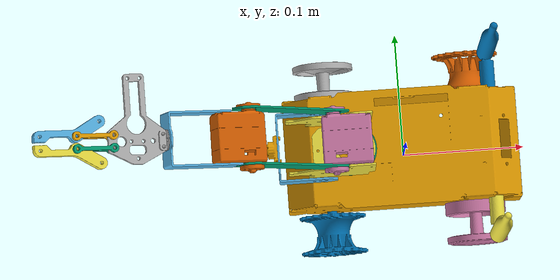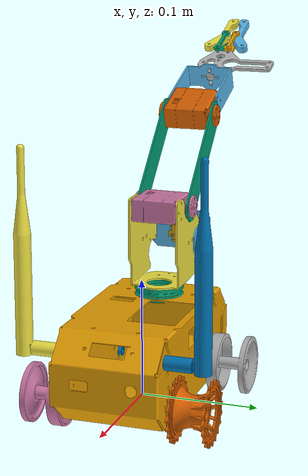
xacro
<robot xmlns:xacro="http://www.ros.org/wiki/xacro">

 <link name="base_link">
        <inertial>
            <origin xyz="-0.0028864851424563968 0.0003605395998919554 0.03729152724217677"
                rpy="0.0 0.0 0.0" />
            <mass value="0.7639308708503839" />
            <inertia ixx="0.00150205741988797" iyy="0.003532242168965159" izz="0.003808278739772123"
                ixy="2.0200689378287296e-06" iyz="4.791503412361428e-06" ixz="5.068154904514763e-05" />
        </inertial>
        <visual name="base_link_visual">
            <origin xyz="0.0 0.0 0.0" rpy="0.0 0.0 0.0" />
            <geometry>
                <mesh filename="file://$(find jetank_bringup)/meshes/base_link.stl"
                    scale="0.001 0.001 0.001" />
            </geometry>
        </visual>
        <collision name="base_link_collision">
            <origin xyz="0.0 0.0 0.0" rpy="0.0 0.0 0.0" />
            <geometry>
                <mesh filename="file://$(find jetank_bringup)/meshes/base_link.stl"
                    scale="0.001 0.001 0.001" />
            </geometry>
        </collision>
    </link>
    <link name="ARM_UPPER">
        <inertial>
            <origin xyz="-0.022908278643665785 0.0006057553402017391 -0.01928712656788768"
                rpy="0.0 -4.220565730941431e-35 -6.162975822039156e-33" />
            <mass value="0.03565761396104929" />
            <inertia ixx="1.5443417400841932e-05" iyy="2.3764463595438004e-05"
                izz="1.3620194048359787e-05" ixy="3.625928097526083e-06"
                iyz="4.6051936175620323e-07" ixz="-1.1226347876157484e-06" />
        </inertial>
        <visual name="ARM_UPPER_visual">
            <origin xyz="-0.042675603894513275 0.008004289658434232 -0.020301207430691776"
                rpy="0.22339825954275927 -1.556184340833111 -0.5813072278980501" />
            <geometry>
                <mesh filename="file://$(find jetank_bringup)/meshes/ARM_UPPER.stl"
                    scale="0.001 0.001 0.001" />
            </geometry>
        </visual>
        <collision name="ARM_UPPER_collision">
            <origin xyz="-0.042675603894513275 0.008004289658434232 -0.020301207430691776"
                rpy="0.22339825954275927 -1.556184340833111 -0.5813072278980501" />
            <geometry>
                <mesh filename="file://$(find jetank_bringup)/meshes/ARM_UPPER.stl"
                    scale="0.001 0.001 0.001" />
            </geometry>
        </collision>
    </link>
    <link name="ARM_MIDDLE">
        <inertial>
            <origin xyz="-0.03358748266767387 0.03358762804395098 -5.157163600578385e-05"
                rpy="0.0 2.407412430484311e-35 1.2161079430919492e-49" />
            <mass value="0.06186397464920469" />
            <inertia ixx="6.497179907917266e-05" iyy="6.497176903594811e-05"
                izz="6.838533670855049e-05" ixy="3.117958759744717e-05" iyz="1.061073116136028e-07"
                ixz="5.2995547323661035e-08" />
        </inertial>
        <visual name="ARM_MIDDLE_visual">
            <origin xyz="-0.0335092778226662 0.03363301371186834 -0.021602684974064732"
                rpy="-3.137540926469612 -0.0010856452132872892 -0.7854003629070162" />
            <geometry>
                <mesh filename="file://$(find jetank_bringup)/meshes/ARM_MIDDLE.stl"
                    scale="0.001 0.001 0.001" />
            </geometry>
        </visual>
        <collision name="ARM_MIDDLE_collision">
            <origin xyz="-0.0335092778226662 0.03363301371186834 -0.021602684974064732"
                rpy="-3.137540926469612 -0.0010856452132872892 -0.7854003629070162" />
            <geometry>
                <mesh filename="file://$(find jetank_bringup)/meshes/ARM_MIDDLE.stl"
                    scale="0.001 0.001 0.001" />
            </geometry>
        </collision>
    </link>
    <link name="ARM_LOWER">
        <inertial>
            <origin xyz="-0.01064722156754466 -5.485356628246008e-05 0.029442007866704572"
                rpy="4.814824860968091e-35 -0.0 3.2073176521106348e-49" />
            <mass value="0.1036438493797283" />
            <inertia ixx="8.81458213535141e-05" iyy="7.950393953510494e-05"
                izz="7.219884111762218e-05" ixy="4.6845951821403056e-08" iyz="2.258742793083176e-07"
                ixz="-2.334825910280157e-06" />
        </inertial>
        <visual name="ARM_LOWER_visual">
            <origin xyz="-0.02591983001797696 9.101096039885847e-05 0.0015000976949900147"
                rpy="-0.00209732879072002 -3.809593605879156e-06 3.137959984463745" />
            <geometry>
                <mesh filename="file://$(find jetank_bringup)/meshes/ARM_LOWER.stl"
                    scale="0.001 0.001 0.001" />
            </geometry>
        </visual>
        <collision name="ARM_LOWER_collision">
            <origin xyz="-0.02591983001797696 9.101096039885847e-05 0.0015000976949900147"
                rpy="-0.00209732879072002 -3.809593605879156e-06 3.137959984463745" />
            <geometry>
                <mesh filename="file://$(find jetank_bringup)/meshes/ARM_LOWER.stl"
                    scale="0.001 0.001 0.001" />
            </geometry>
        </collision>
    </link>
    <link name="DRIVER_WHEEL_L">
        <inertial>
            <origin xyz="6.909868758699923e-05 -5.0523203168468815e-05 -0.019021631303903268"
                rpy="0.0 1.8570051196622238e-34 0.0" />
            <mass value="0.10496982138298995" />
            <inertia ixx="2.2560499003626737e-05" iyy="2.251410282101856e-05"
                izz="2.4612100281121576e-05" ixy="-5.694123753574936e-11"
                iyz="1.5726877697940232e-08" ixz="-7.452984821786984e-09" />
        </inertial>
        <visual name="DRIVER_WHEEL_L_visual">
            <origin xyz="1.452944835456549e-05 -8.388494253024348e-06 -0.003999967103401225"
                rpy="0.5236006817835094 -1.566601673837709 2.617991971944676" />
            <geometry>
                <mesh filename="file://$(find jetank_bringup)/meshes/DRIVER_WHEEL_L.stl"
                    scale="0.001 0.001 0.001" />
            </geometry>
        </visual>
        <collision name="DRIVER_WHEEL_L_collision">
            <origin xyz="1.452944835456549e-05 -8.388494253024348e-06 -0.003999967103401225"
                rpy="0.5236006817835094 -1.566601673837709 2.617991971944676" />
            <geometry>
                <mesh filename="file://$(find jetank_bringup)/meshes/DRIVER_WHEEL_L.stl"
                    scale="0.001 0.001 0.001" />
            </geometry>
        </collision>
    </link>
    <link name="DRIVER_WHEEL_R">
        <inertial>
            <origin xyz="-6.909654809962084e-05 -2.9269046357853768e-05 -0.019021673226760922"
                rpy="0.0 -6.360951486702456e-35 0.0" />
            <mass value="0.1049698213829899" />
            <inertia ixx="2.2560499004256008e-05" iyy="2.251400779881374e-05"
                izz="2.4612195302702004e-05" ixy="-2.5324020125478572e-11"
                iyz="-6.925989762745856e-09" ixz="7.453243651668403e-09" />
        </inertial>
        <visual name="DRIVER_WHEEL_R_visual">
            <origin xyz="-1.4501981486878535e-05 -8.391092988526694e-06 -0.003999964535501115"
                rpy="-0.5236006818924672 -1.5666016738377524 0.52360068175411" />
            <geometry>
                <mesh filename="file://$(find jetank_bringup)/meshes/DRIVER_WHEEL_R.stl"
                    scale="0.001 0.001 0.001" />
            </geometry>
        </visual>
        <collision name="DRIVER_WHEEL_R_collision">
            <origin xyz="-1.4501981486878535e-05 -8.391092988526694e-06 -0.003999964535501115"
                rpy="-0.5236006818924672 -1.5666016738377524 0.52360068175411" />
            <geometry>
                <mesh filename="file://$(find jetank_bringup)/meshes/DRIVER_WHEEL_R.stl"
                    scale="0.001 0.001 0.001" />
            </geometry>
        </collision>
    </link>
    <link name="FREE_WHEEL_L">
        <inertial>
            <origin xyz="4.913425615981737e-05 -2.8359849328207787e-05 -0.01352728007660148"
                rpy="0.0 1.8570051196622238e-34 0.0" />
            <mass value="0.11488889485414525" />
            <inertia ixx="4.0681765416765274e-05" iyy="4.068201157526234e-05"
                izz="4.0263672111597786e-05" ixy="3.7418240329583945e-12"
                iyz="-8.518904315297003e-10" ixz="1.5048848574955645e-09" />
        </inertial>
        <visual name="FREE_WHEEL_L_visual">
            <origin xyz="5.322111004383068e-05 -3.072566262244614e-05 -0.014649873776578809"
                rpy="1.5686679065776332 -0.003614548455738382 0.008580194849726693" />
            <geometry>
                <mesh filename="file://$(find jetank_bringup)/meshes/FREE_WHEEL_L.stl"
                    scale="0.001 0.001 0.001" />
            </geometry>
        </visual>
        <collision name="FREE_WHEEL_L_collision">
            <origin xyz="5.322111004383068e-05 -3.072566262244614e-05 -0.014649873776578809"
                rpy="1.5686679065776332 -0.003614548455738382 0.008580194849726693" />
            <geometry>
                <mesh filename="file://$(find jetank_bringup)/meshes/FREE_WHEEL_L.stl"
                    scale="0.001 0.001 0.001" />
            </geometry>
        </collision>
    </link>
    <link name="FREE_WHEEL_R">
        <inertial>
            <origin xyz="-4.91456850747074e-05 -2.8363712536370045e-05 -0.013527277364732724"
                rpy="0.0 -6.360951486702456e-35 0.0" />
            <mass value="0.11488889485415185" />
            <inertia ixx="4.0681765245256105e-05" iyy="4.0682011546281835e-05"
                izz="4.0263672312089414e-05" ixy="-3.654323655849692e-13"
                iyz="-8.517839320012789e-10" ixz="-1.5325482430441093e-09" />
        </inertial>
        <visual name="FREE_WHEEL_R_visual">
            <origin xyz="3.8144482055946226e-05 2.2017392292781324e-05 0.01049990762224918"
                rpy="1.5686989841660284 0.003632669359659834 -3.8096197296224606e-06" />
            <geometry>
                <mesh filename="file://$(find jetank_bringup)/meshes/FREE_WHEEL_R.stl"
                    scale="0.001 0.001 0.001" />
            </geometry>
        </visual>
        <collision name="FREE_WHEEL_R_collision">
            <origin xyz="3.8144482055946226e-05 2.2017392292781324e-05 0.01049990762224918"
                rpy="1.5686989841660284 0.003632669359659834 -3.8096197296224606e-06" />
            <geometry>
                <mesh filename="file://$(find jetank_bringup)/meshes/FREE_WHEEL_R.stl"
                    scale="0.001 0.001 0.001" />
            </geometry>
        </collision>
    </link>
        <link name="CAMERA">
        <inertial>
            <origin xyz="-0.005467113295410968 -4.792118534928669e-06 0.0028147721817248163"
                rpy="0.0 -0.0 -1.1739041031382518e-47" />
            <mass value="0.019177097425958016" />
            <inertia ixx="1.2125641079973622e-06" iyy="1.0782087605613606e-06"
                izz="9.171773161657565e-07" ixy="1.5309653202804099e-09"
                iyz="-1.0748684910103616e-10" ixz="2.0956885269530622e-07" />
        </inertial>
        <visual name="CAMERA_visual">
            <origin xyz="-4.481242470433245e-09 -2.2840283131486673e-09 3.780146231591175e-09"
                rpy="-3.139495324799226 -3.8095938720097817e-06 0.003632669126105752" />
            <geometry>
                <mesh filename="file://$(find jetank_bringup)/meshes/CAMERA.stl"
                    scale="0.001 0.001 0.001" />
            </geometry>
        </visual>
        <collision name="CAMERA_collision">
            <origin xyz="-4.481242470433245e-09 -2.2840283131486673e-09 3.780146231591175e-09"
                rpy="-3.139495324799226 -3.8095938720097817e-06 0.003632669126105752" />
            <geometry>
                <mesh filename="file://$(find jetank_bringup)/meshes/CAMERA.stl"
                    scale="0.001 0.001 0.001" />
            </geometry>
        </collision>
    </link>
    <link name="CAM_HOLDER">
        <inertial>
            <origin xyz="-0.022309879542198107 1.7398627940234946e-06 -8.10411995800453e-05"
                rpy="0.0 -2.0981802744010314e-34 -1.88079096131566e-37" />
            <mass value="0.04320508566431304" />
            <inertia ixx="2.5816875300630775e-05" iyy="3.164288509735364e-05"
                izz="1.2443592739336833e-05" ixy="7.560146391039103e-10"
                iyz="4.0270847025312724e-08" ixz="4.858356482648958e-08" />
        </inertial>
        <visual name="CAM_HOLDER_visual">
            <origin xyz="-0.033848894481244764 1.262198380391766e-07 -0.00012296228401156072"
                rpy="2.6179919438508934 -1.5666016740396613 -2.617991943988682" />
            <geometry>
                <mesh filename="file://$(find jetank_bringup)/meshes/CAM_HOLDER.stl"
                    scale="0.001 0.001 0.001" />
            </geometry>
        </visual>
        <collision name="CAM_HOLDER_collision">
            <origin xyz="-0.033848894481244764 1.262198380391766e-07 -0.00012296228401156072"
                rpy="2.6179919438508934 -1.5666016740396613 -2.617991943988682" />
            <geometry>
                <mesh filename="file://$(find jetank_bringup)/meshes/CAM_HOLDER.stl"
                    scale="0.001 0.001 0.001" />
            </geometry>
        </collision>
    </link>
    <link name="BEARING">
        <inertial>
            <origin xyz="-1.4377769774753802e-08 5.306325474567775e-06 -0.0025299943110332545"
                rpy="0.0 -0.0 -8.784755544884209e-38" />
            <mass value="0.05589211207057759" />
            <inertia ixx="9.015512369875424e-06" iyy="9.015545628046614e-06"
                izz="1.657627265380158e-05" ixy="-6.040612411177808e-14"
                iyz="-1.585742346699663e-08" ixz="2.880142248182665e-11" />
        </inertial>
        <visual name="BEARING_visual">
            <origin xyz="5.430652114668533e-09 -5.599776194038509e-06 0.0026699942169905724"
                rpy="-3.1394953247999835 -3.809593613640393e-06 0.0036326691260505526" />
            <geometry>
                <mesh filename="file://$(find jetank_bringup)/meshes/BEARING.stl"
                    scale="0.001 0.001 0.001" />
            </geometry>
        </visual>
        <collision name="BEARING_collision">
            <origin xyz="5.430652114668533e-09 -5.599776194038509e-06 0.0026699942169905724"
                rpy="-3.1394953247999835 -3.809593613640393e-06 0.0036326691260505526" />
            <geometry>
                <mesh filename="file://$(find jetank_bringup)/meshes/BEARING.stl"
                    scale="0.001 0.001 0.001" />
            </geometry>
        </collision>
    </link>
    <link name="ANTENNA_L">
        <inertial>
            <origin xyz="0.00010428589158372858 0.05125494812152533 -0.028760898470254075"
                rpy="0.0 1.8570051196622238e-34 0.0" />
            <mass value="0.1712590340150529" />
            <inertia ixx="0.000314068362815308" iyy="1.1348965126681299e-05"
                izz="0.0003064181988690546" ixy="-7.600553009246833e-08"
                iyz="2.1240148373447467e-05" ixz="2.77100862291307e-08" />
        </inertial>
        <visual name="ANTENNA_L_visual">
            <origin xyz="0.012558233063349657 -0.006064954690762062 -0.030941931787802295"
                rpy="0.5236006817820806 -1.566601673837696 2.6179919719464855" />
            <geometry>
                <mesh filename="file://$(find jetank_bringup)/meshes/ANTENNA_L.stl"
                    scale="0.001 0.001 0.001" />
            </geometry>
        </visual>
        <collision name="ANTENNA_L_collision">
            <origin xyz="0.012558233063349657 -0.006064954690762062 -0.030941931787802295"
                rpy="0.5236006817820806 -1.566601673837696 2.6179919719464855" />
            <geometry>
                <mesh filename="file://$(find jetank_bringup)/meshes/ANTENNA_L.stl"
                    scale="0.001 0.001 0.001" />
            </geometry>
        </collision>
    </link>
    <link name="ANTENNA_R">
        <inertial>
            <origin xyz="-0.00010388848222362413 -0.05137513349335263 -0.028545652272082785"
                rpy="0.0 -6.360951486702456e-35 0.0" />
            <mass value="0.17125903401505282" />
            <inertia ixx="0.00031406836395675376" iyy="1.117596753400613e-05"
                izz="0.00030659119532028506" ixy="-7.381378770492805e-08"
                iyz="-2.0001701262118792e-05" ixz="-2.723875833525843e-08" />
        </inertial>
        <visual name="ANTENNA_R_visual">
            <origin xyz="-0.00011258950982521831 -0.006064999678879916 -0.030987146017140126"
                rpy="-0.523600702813549 -1.5666016737795367 0.5236007026751052" />
            <geometry>
                <mesh filename="file://$(find jetank_bringup)/meshes/ANTENNA_R.stl"
                    scale="0.001 0.001 0.001" />
            </geometry>
        </visual>
        <collision name="ANTENNA_R_collision">
            <origin xyz="-0.00011258950982521831 -0.006064999678879916 -0.030987146017140126"
                rpy="-0.523600702813549 -1.5666016737795367 0.5236007026751052" />
            <geometry>
                <mesh filename="file://$(find jetank_bringup)/meshes/ANTENNA_R.stl"
                    scale="0.001 0.001 0.001" />
            </geometry>
        </collision>
    </link>
    <link name="SERVO_UPPER">
        <inertial>
            <origin xyz="-0.008710205981769175 -0.0008931796940865167 -0.0032610178523219346"
                rpy="0.0 -0.0 8.152758619563242e-34" />
            <mass value="0.20982161326472018" />
            <inertia ixx="3.914539867865734e-05" iyy="3.5263719700624594e-05"
                izz="5.518967950991577e-05" ixy="-3.681143850732295e-07"
                iyz="-2.158225678133891e-07" ixz="-6.978918972026999e-06" />
        </inertial>
        <visual name="SERVO_UPPER_visual">
            <origin xyz="-0.005884888244401978 0.002005539666205546 -0.01282565966177529"
                rpy="-3.139353401733166 -0.35794030259148174 0.002848163431076057" />
            <geometry>
                <mesh filename="file://$(find jetank_bringup)/meshes/SERVO_UPPER.stl"
                    scale="0.001 0.001 0.001" />
            </geometry>
        </visual>
        <collision name="SERVO_UPPER_collision">
            <origin xyz="-0.005884888244401978 0.002005539666205546 -0.01282565966177529"
                rpy="-3.139353401733166 -0.35794030259148174 0.002848163431076057" />
            <geometry>
                <mesh filename="file://$(find jetank_bringup)/meshes/SERVO_UPPER.stl"
                    scale="0.001 0.001 0.001" />
            </geometry>
        </collision>
    </link>
    <link name="SERVO_LOWER">
        <inertial>
            <origin xyz="-0.01778076329454675 -3.6698115345306094e-05 0.01751711641612725"
                rpy="0.0 -0.0 5.473822126268817e-48" />
            <mass value="0.20982161326471963" />
            <inertia ixx="3.6529219753117384e-05" iyy="5.780064634567519e-05"
                izz="3.5268927790314385e-05" ixy="-1.2716158555447347e-09"
                iyz="4.7018874707341185e-08" ixz="4.283700030945317e-07" />
        </inertial>
        <visual name="SERVO_LOWER_visual">
            <origin xyz="-0.017088390888296067 0.009918027624157234 0.01882732151779485"
                rpy="-1.5728936694252873 0.0036326691260359155 3.1415888439710504" />
            <geometry>
                <mesh filename="file://$(find jetank_bringup)/meshes/SERVO_LOWER.stl"
                    scale="0.001 0.001 0.001" />
            </geometry>
        </visual>
        <collision name="SERVO_LOWER_collision">
            <origin xyz="-0.017088390888296067 0.009918027624157234 0.01882732151779485"
                rpy="-1.5728936694252873 0.0036326691260359155 3.1415888439710504" />
            <geometry>
                <mesh filename="file://$(find jetank_bringup)/meshes/SERVO_LOWER.stl"
                    scale="0.001 0.001 0.001" />
            </geometry>
        </collision>
    </link>
    <link name="GRIPPER_BASE">
        <inertial>
            <origin xyz="0.018711205204747332 0.007640083665599069 -0.007388532023619128"
                rpy="0.0 -3.469446951953614e-18 -1.6155871338926322e-27" />
            <mass value="0.0366550366587098" />
            <inertia ixx="1.2285515330750476e-05" iyy="6.94612066955528e-06"
                izz="1.715774480621983e-05" ixy="-9.121676749908667e-07"
                iyz="3.9753185062321765e-07" ixz="2.272496699844335e-06" />
        </inertial>
        <visual name="GRIPPER_BASE_visual">
            <origin xyz="0.017997217528542855 4.248560344255803e-05 -0.005469218003321004"
                rpy="-0.3748566771788548 -0.0020355939143487573 -1.5671286856792996" />
            <geometry>
                <mesh filename="file://$(find jetank_bringup)/meshes/GRIPPER_BASE.stl"
                    scale="0.001 0.001 0.001" />
            </geometry>
        </visual>
        <collision name="GRIPPER_BASE_collision">
            <origin xyz="0.017997217528542855 4.248560344255803e-05 -0.005469218003321004"
                rpy="-0.3748566771788548 -0.0020355939143487573 -1.5671286856792996" />
            <geometry>
                <mesh filename="file://$(find jetank_bringup)/meshes/GRIPPER_BASE.stl"
                    scale="0.001 0.001 0.001" />
            </geometry>
        </collision>
    </link>
    <link name="GRIPPER_L1">
        <inertial>
            <origin xyz="-0.012998250088038078 -3.0306803820455697e-05 -0.008065030577021126"
                rpy="0.0 -0.0 0.0" />
            <mass value="0.0062442558314246485" />
            <inertia ixx="2.2945298088091447e-07" iyy="9.557086105196205e-07"
                izz="7.526842531313375e-07" ixy="-2.161025306364326e-09"
                iyz="-4.008141477858269e-10" ixz="-2.2755649847891381e-07" />
        </inertial>
        <visual name="GRIPPER_L1_visual">
            <origin xyz="-0.011947302972329262 -2.0470283309416138e-05 -0.010874872369057797"
                rpy="-0.0022392674104247065 0.3579393353524086 -3.1387444878467536" />
            <geometry>
                <mesh filename="file://$(find jetank_bringup)/meshes/GRIPPER_L1.stl"
                    scale="0.001 0.001 0.001" />
            </geometry>
        </visual>
        <collision name="GRIPPER_L1_collision">
            <origin xyz="-0.011947302972329262 -2.0470283309416138e-05 -0.010874872369057797"
                rpy="-0.0022392674104247065 0.3579393353524086 -3.1387444878467536" />
            <geometry>
                <mesh filename="file://$(find jetank_bringup)/meshes/GRIPPER_L1.stl"
                    scale="0.001 0.001 0.001" />
            </geometry>
        </collision>
    </link>
    <link name="GRIPPER_L2">
        <inertial>
            <origin xyz="-0.0012296239530053298 0.0039691186133053915 0.0036766615181430496"
                rpy="0.0 -0.0 0.0" />
            <mass value="0.02146027585992414" />
            <inertia ixx="1.2266606930363098e-06" iyy="6.125907172840806e-06"
                izz="5.756214866640529e-06" ixy="-9.873904819377294e-07"
                iyz="3.6806864768416604e-07" ixz="1.9653297004488396e-06" />
        </inertial>
        <visual name="GRIPPER_L2_visual">
            <origin xyz="0.003188025644908059 -2.9460874184410457e-05 0.008523209934978624"
                rpy="0.002239267410431555 0.35793933535233774 -0.0028481657430385345" />
            <geometry>
                <mesh filename="file://$(find jetank_bringup)/meshes/GRIPPER_L2.stl"
                    scale="0.001 0.001 0.001" />
            </geometry>
        </visual>
        <collision name="GRIPPER_L2_collision">
            <origin xyz="0.003188025644908059 -2.9460874184410457e-05 0.008523209934978624"
                rpy="0.002239267410431555 0.35793933535233774 -0.0028481657430385345" />
            <geometry>
                <mesh filename="file://$(find jetank_bringup)/meshes/GRIPPER_L2.stl"
                    scale="0.001 0.001 0.001" />
            </geometry>
        </collision>
    </link>
    <link name="GRIPPER_R1">
        <inertial>
            <origin xyz="-0.012998246756733707 -3.0304779780740975e-05 -0.008065027151216597"
                rpy="0.0 -0.0 0.0" />
            <mass value="0.006244255831424673" />
            <inertia ixx="2.294529808805892e-07" iyy="9.557086105191868e-07"
                izz="7.526842531311207e-07" ixy="-2.1610253063812667e-09"
                iyz="-4.008141478629069e-10" ixz="-2.2755649847891381e-07" />
        </inertial>
        <visual name="GRIPPER_R1_visual">
            <origin xyz="-0.01194722862140111 -2.0523049998069087e-05 -0.010874850394411446"
                rpy="-0.002239267410441002 0.3579393353523948 -3.1387444878468265" />
            <geometry>
                <mesh filename="file://$(find jetank_bringup)/meshes/GRIPPER_R1.stl"
                    scale="0.001 0.001 0.001" />
            </geometry>
        </visual>
        <collision name="GRIPPER_R1_collision">
            <origin xyz="-0.01194722862140111 -2.0523049998069087e-05 -0.010874850394411446"
                rpy="-0.002239267410441002 0.3579393353523948 -3.1387444878468265" />
            <geometry>
                <mesh filename="file://$(find jetank_bringup)/meshes/GRIPPER_R1.stl"
                    scale="0.001 0.001 0.001" />
            </geometry>
        </collision>
    </link>
    <link name="GRIPPER_R2">
        <inertial>
            <origin xyz="-0.0012584873319152834 0.003975470401698931 -0.0036599972005064174"
                rpy="0.0 -0.0 -6.018531076210082e-35" />
            <mass value="0.021460275859939086" />
            <inertia ixx="1.2412063985862897e-06" iyy="6.1145027700224355e-06"
                izz="5.753073563923234e-06" ixy="-1.0146443397531036e-06"
                iyz="-3.808193345589322e-07" ixz="-1.9668082650145446e-06" />
        </inertial>
        <visual name="GRIPPER_R2_visual">
            <origin xyz="0.002101980241199648 1.9421618867496714e-05 -0.005619691253464972"
                rpy="0.0022392674104621166 -0.3579393353523876 0.002848165742967234" />
            <geometry>
                <mesh filename="file://$(find jetank_bringup)/meshes/GRIPPER_R2.stl"
                    scale="0.001 0.001 0.001" />
            </geometry>
        </visual>
        <collision name="GRIPPER_R2_collision">
            <origin xyz="0.002101980241199648 1.9421618867496714e-05 -0.005619691253464972"
                rpy="0.0022392674104621166 -0.3579393353523876 0.002848165742967234" />
            <geometry>
                <mesh filename="file://$(find jetank_bringup)/meshes/GRIPPER_R2.stl"
                    scale="0.001 0.001 0.001" />
            </geometry>
        </collision>
    </link>

    <!-- ================ JOINTS ================ -->

    <joint name="base_link_rigid_ANTENNA_L_BASE_JOINT" type="fixed">
        <origin xyz="0.07179583880228464 -0.04420000207379436 0.05764911381971492"
            rpy="1.5728936555844633 -3.8093179705849477e-06 -3.137959984697281" />
        <parent link="base_link" />
        <child link="ANTENNA_L" />
    </joint>
    <joint name="base_link_rigid_BEARING_BASE_JOINT" type="fixed">
        <origin xyz="-0.04452917997058859 -1.5196239222525777e-09 0.07665000059344261"
            rpy="3.1394953248003925 3.8093184609959428e-06 0.0036326691263383853" />
        <parent link="base_link" />
        <child link="BEARING" />
    </joint>
    <joint name="turn ARM" type="revolute">
        <origin xyz="-3.999999486303807e-08 1.68399999926927e-05 -0.008029980000000016"
            rpy="3.1415926535888836 8.470329472757884e-22 2.3620969572063488e-20" />
        <parent link="BEARING" />
        <child link="ARM_LOWER" />
        <axis xyz="-3.999999999999999e-06 -0.002097 0.9999979999999999" />
        <limit lower="-${PI/2}" upper="${PI/2}" effort="1000000" velocity="1000000" />
    </joint>
    <joint name="FREE WHEEL LEFT" type="continuous">
        <origin xyz="0.05602081595239314 -0.04419999897832626 0.0133491162833511"
            rpy="1.5728936555844633 -3.8093179705849477e-06 -3.137959984697281" />
        <parent link="base_link" />
        <child link="FREE_WHEEL_L" />
        <axis xyz="-0.0036329997661754595 0.002096999999255531 0.9999910000008511" />
    </joint>
    <joint name="FREE WHEEL RIGHT" type="continuous">
        <origin xyz="-0.06247918316236259 0.044199998372174795 0.01334911112288851"
            rpy="-1.5686989980047508 -3.8093179709724106e-06 -3.1379599846970962" />
        <parent link="base_link" />
        <child link="FREE_WHEEL_R" />
        <axis xyz="0.003632999766360199 0.002096999999834741 0.9999910000008492" />
    </joint>
    <joint name="CAM_HOLDER_rigid_CAMERA_CAMERA_HOLDER" type="fixed">
        <origin xyz="-0.033848889999999916 1.2999999999152578e-07 -0.00012295999999945018"
            rpy="1.5707963267947316 1.6241874574454326e-14 -2.349358402905514e-19" />
        <parent link="CAM_HOLDER" />
        <child link="CAMERA" />
    </joint>
    <joint name="ARM_LOWER_rigid_CAMERA_HOLDER_ARM_LOWER" type="fixed">
        <origin xyz="-0.02479996000000001 1.7979999999999662e-05 0.03438114"
            rpy="1.5707963267950638 2.5410988417699412e-21 -1.6242292381727147e-14" />
        <parent link="ARM_LOWER" />
        <child link="CAM_HOLDER" />
    </joint>
    <joint name="GRIPPER L1" type="revolute">
        <origin xyz="0.041940669305476776 0.005111130007857552 -0.014907472498325022"
            rpy="-5.535091464327934e-10 -0.016916595705107427 3.141592653589793" />
        <parent link="GRIPPER_BASE" />
        <child link="GRIPPER_L1" />
        <axis xyz="0.350336 0.003237 -0.936618" />
        <limit lower="-${PI/4}" upper="0.0" effort="1000000" velocity="1000000" />
    </joint>
    <joint name="GRIPPER L2" type="revolute">
        <origin xyz="-0.028133550000000014 -8.035999999999932e-05 -0.010416690000000024"
            rpy="3.141592653589793 -4.4510473808249043e-67 -3.2526065174565133e-19" />
        <parent link="GRIPPER_L1" />
        <child link="GRIPPER_L2" />
        <axis xyz="-0.350336 0.0032370000000000003 -0.936618" />
        <limit lower="-${PI/4}" upper="0.0" effort="1000000" velocity="1000000" />
    </joint>
    <joint name="SERVO UPPER" type="revolute">
        <origin xyz="-0.06717496000000145 0.06717525000000088 -0.00010314000001945046"
            rpy="1.5707963267946035 -1.1116756861297127e-16 2.1684043452959522e-19" />
        <parent link="ARM_MIDDLE" />
        <child link="SERVO_UPPER" />
        <axis xyz="-0.0036329999999998286 0.9999909999999781 0.002097000000003716" />
        <limit lower="-${2*PI/PI}" upper="${PI/PI}" effort="1000000" velocity="1000000" />
    </joint>
    <joint name="SERVO LOWER" type="revolute">
        <origin xyz="-0.027086840000000004 -3.859000000304036e-05 0.018351689999999997"
            rpy="4.546362452465827e-13 3.725489130040891e-19 6.153187910945729e-32" />
        <parent link="SERVO_LOWER" />
        <child link="ARM_MIDDLE" />
        <axis xyz="-0.0036329999999999214 -0.002096999999710479 0.9999909999999733" />
        <limit lower="0" upper="${PI/4}" effort="1000000" velocity="1000000" />
    </joint>
    <joint name="ARM_LOWER_Rigid_SERVO_LOWER_ARM_LOWER" type="fixed">
        <origin xyz="0.013493039999999996 0.020010240000000002 0.06719127999999999"
            rpy="1.5707963267947316 1.2705494208814507e-21 -2.114091665950777e-19" />
        <parent link="ARM_LOWER" />
        <child link="SERVO_LOWER" />
    </joint>
    <joint name="DRIVING WHEEL R" type="continuous">
        <origin xyz="0.056020818716250656 0.04419999872667847 0.013349112559074356"
            rpy="-1.5686989980047508 -3.8093179709724106e-06 -3.1379599846970962" />
        <parent link="base_link" />
        <child link="DRIVER_WHEEL_R" />
        <axis xyz="0.003632999766360199 0.002096999999834741 0.9999910000008492" />
    </joint>
    <joint name="DRIVING WHEEL L" type="continuous">
        <origin xyz="-0.06247918592622011 -0.04419999933282993 0.013349114847165264"
            rpy="1.5728936555844633 -3.8093179705849477e-06 -3.137959984697281" />
        <parent link="base_link" />
        <child link="DRIVER_WHEEL_L" />
        <axis xyz="-0.0036329997661754595 0.002096999999255531 0.9999910000008511" />
    </joint>
    <joint name="GRIPPER R2" type="revolute">
        <origin xyz="-0.02809851000000002 -8.002999999999983e-05 -0.010510349999999988"
            rpy="2.168404344970954e-19 5.5511151231257815e-17 -4.336808689941986e-19" />
        <parent link="GRIPPER_R1" />
        <child link="GRIPPER_R2" />
        <axis xyz="0.3503360000000001 0.003237 -0.936618" />
        <limit lower="-${PI/4}" upper="0" effort="1000000" velocity="1000000" />
    </joint>
    <joint name="GRIPPER R1" type="revolute">
        <origin xyz="0.041977348831299825 -0.004888779992154056 -0.014887120054902746"
            rpy="-5.535091464327934e-10 -0.016916595705107427 3.141592653589793" />
        <parent link="GRIPPER_BASE" />
        <child link="GRIPPER_R1" />
        <axis xyz="0.350336 0.003237 -0.936618" />
        <limit lower="0" upper="${PI/4}" effort="1000000" velocity="1000000" />
    </joint>
    <joint name="ARM_UPPER_rigid_GRIPPER_BASE_ARM_UPPER" type="fixed">
        <origin xyz="-0.04267559999999579 0.008004290000004133 -0.02030120999999836"
            rpy="-1.5707963273485313 9.366508094533604e-12 -3.124676057884686" />
        <parent link="ARM_UPPER" />
        <child link="GRIPPER_BASE" />
    </joint>
    <joint name="SERVO_UPPER_rigid_UPPER_ARM_SERVO_UPPER" type="fixed">
        <origin xyz="-0.02320699000000083 0.021300730000000528 -0.016614370000000277"
            rpy="-1.5707963267951013 -5.572799166575498e-17 -1.106970418107717e-16" />
        <parent link="SERVO_UPPER" />
        <child link="ARM_UPPER" />
    </joint>
    <joint name="base_link_rigid_ANTENNA_R_BASE_JOINT" type="fixed">
        <origin xyz="0.07179584156610407 0.044199995652183625 0.05764912009541617"
            rpy="-1.5686989980047508 -3.8093179709724106e-06 -3.1379599846970962" />
        <parent link="base_link" />
        <child link="ANTENNA_R" />
    </joint>
</robot>
